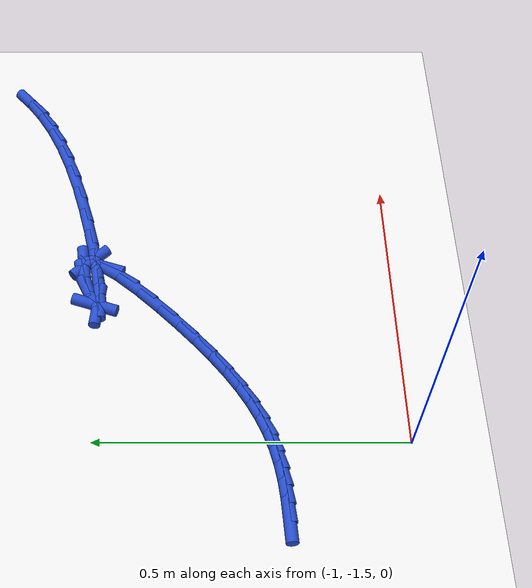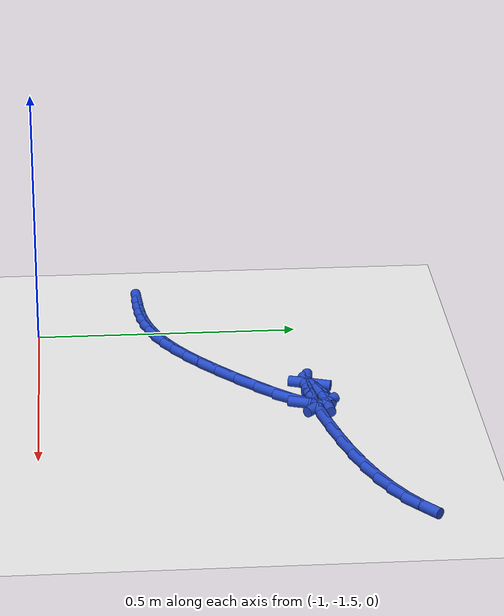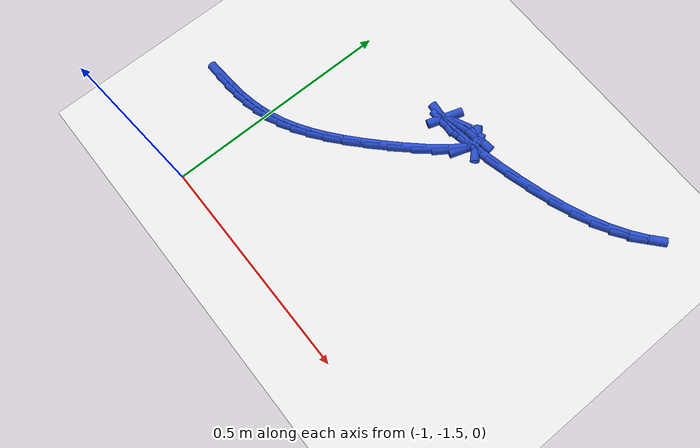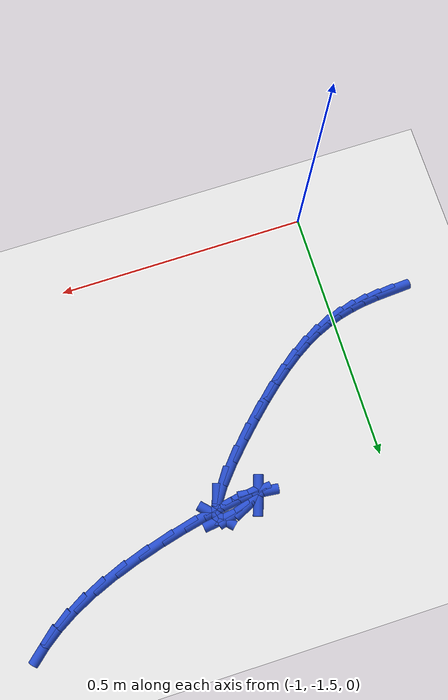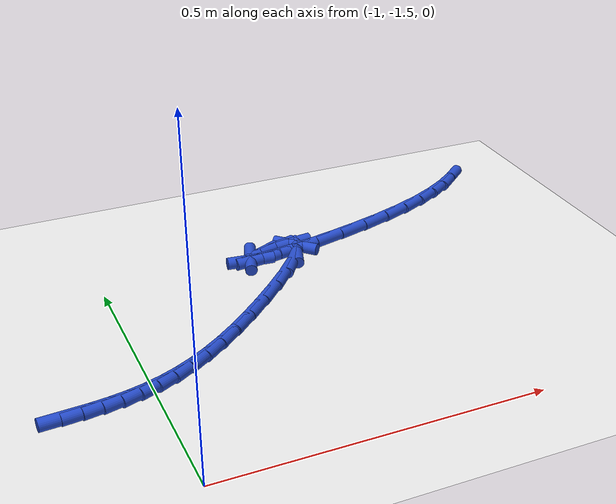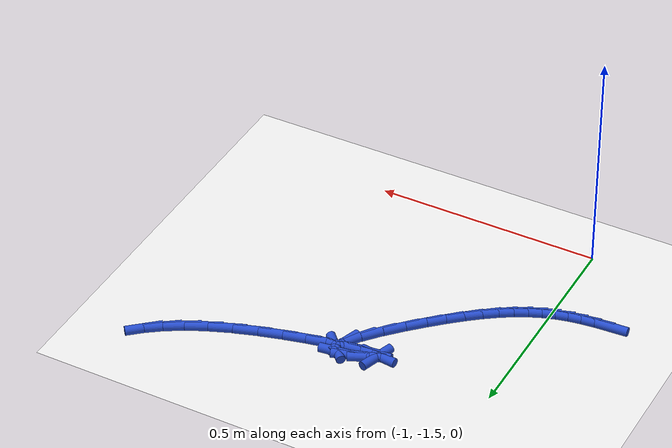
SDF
<sdf version="1.6">
 <world name="default">
  <model name="ground_plane">
   <static>1</static>
   <link name="link">
    <collision name="collision">
     <geometry><plane><normal>0 0 1</normal><size>100 100</size></plane></geometry>
     <surface><friction><ode><mu>100</mu><mu2>50</mu2></ode></friction></surface>
    </collision>
    <visual name="visual">
     <cast_shadows>0</cast_shadows>
     <geometry><plane><normal>0 0 1</normal><size>100 100</size></plane></geometry>
     <material>
      <script><uri>file://media/materials/scripts/gazebo.material</uri><name>Gazebo/WhiteGlow</name></script>
     </material>
    </visual>
   </link>
  </model>
  <model name="line">
   <link name="link_217">
    <pose>-1.1274592770726732 -1.3027210247175114 0.01 0 1.57 0.061918483999061046</pose>
    <collision name="collision">
     <geometry><cylinder><radius>0.01</radius><length>0.08</length></cylinder></geometry>
    </collision>
    <visual name="visual">
     <material>
      <script><name>Gazebo/Blue</name><uri>file://media/materials/scripts/gazebo.material</uri></script>
     </material>
     <geometry><cylinder><radius>0.01</radius><length>0.08</length></cylinder></geometry>
    </visual>
   </link>
   <link name="link_218">
    <pose>-1.0966952616237033 -1.3008137254319017 0.01 0 1.57 0.11054753590388428</pose>
    <collision name="collision">
     <geometry><cylinder><radius>0.01</radius><length>0.08</length></cylinder></geometry>
    </collision>
    <visual name="visual">
     <material>
      <script><name>Gazebo/Blue</name><uri>file://media/materials/scripts/gazebo.material</uri></script>
     </material>
     <geometry><cylinder><radius>0.01</radius><length>0.08</length></cylinder></geometry>
    </visual>
   </link>
   <link name="link_219">
    <pose>-1.0675848770896164 -1.2975824706219656 0.01 0 1.57 0.17142692021866196</pose>
    <collision name="collision">
     <geometry><cylinder><radius>0.01</radius><length>0.08</length></cylinder></geometry>
    </collision>
    <visual name="visual">
     <material>
      <script><name>Gazebo/Blue</name><uri>file://media/materials/scripts/gazebo.material</uri></script>
     </material>
     <geometry><cylinder><radius>0.01</radius><length>0.08</length></cylinder></geometry>
    </visual>
   </link>
   <link name="link_220">
    <pose>-1.0397493821685289 -1.2927634185805694 0.01 0 1.57 0.24273636153643757</pose>
    <collision name="collision">
     <geometry><cylinder><radius>0.01</radius><length>0.08</length></cylinder></geometry>
    </collision>
    <visual name="visual">
     <material>
      <script><name>Gazebo/Blue</name><uri>file://media/materials/scripts/gazebo.material</uri></script>
     </material>
     <geometry><cylinder><radius>0.01</radius><length>0.08</length></cylinder></geometry>
    </visual>
   </link>
   <link name="link_221">
    <pose>-1.0128100355585594 -1.2860927276005805 0.01 0 1.57 0.3210302445852608</pose>
    <collision name="collision">
     <geometry><cylinder><radius>0.01</radius><length>0.08</length></cylinder></geometry>
    </collision>
    <visual name="visual">
     <material>
      <script><name>Gazebo/Blue</name><uri>file://media/materials/scripts/gazebo.material</uri></script>
     </material>
     <geometry><cylinder><radius>0.01</radius><length>0.08</length></cylinder></geometry>
    </visual>
   </link>
   <link name="link_222">
    <pose>-0.9863880959578252 -1.2773065559748644 0.01 0 1.57 0.4017128116155707</pose>
    <collision name="collision">
     <geometry><cylinder><radius>0.01</radius><length>0.08</length></cylinder></geometry>
    </collision>
    <visual name="visual">
     <material>
      <script><name>Gazebo/Blue</name><uri>file://media/materials/scripts/gazebo.material</uri></script>
     </material>
     <geometry><cylinder><radius>0.01</radius><length>0.08</length></cylinder></geometry>
    </visual>
   </link>
   <link name="link_223">
    <pose>-0.9601048220644435 -1.2661410619962883 0.01 0 1.57 0.48000933401203055</pose>
    <collision name="collision">
     <geometry><cylinder><radius>0.01</radius><length>0.08</length></cylinder></geometry>
    </collision>
    <visual name="visual">
     <material>
      <script><name>Gazebo/Blue</name><uri>file://media/materials/scripts/gazebo.material</uri></script>
     </material>
     <geometry><cylinder><radius>0.01</radius><length>0.08</length></cylinder></geometry>
    </visual>
   </link>
   <link name="link_224">
    <pose>-0.9335814725765325 -1.2523324039577184 0.01 0 1.57 0.551996757002641</pose>
    <collision name="collision">
     <geometry><cylinder><radius>0.01</radius><length>0.08</length></cylinder></geometry>
    </collision>
    <visual name="visual">
     <material>
      <script><name>Gazebo/Blue</name><uri>file://media/materials/scripts/gazebo.material</uri></script>
     </material>
     <geometry><cylinder><radius>0.01</radius><length>0.08</length></cylinder></geometry>
    </visual>
   </link>
   <link name="link_225">
    <pose>-0.9064393061922097 -1.2356167401520222 0.01 0 1.57 0.615212448903588</pose>
    <collision name="collision">
     <geometry><cylinder><radius>0.01</radius><length>0.08</length></cylinder></geometry>
    </collision>
    <visual name="visual">
     <material>
      <script><name>Gazebo/Blue</name><uri>file://media/materials/scripts/gazebo.material</uri></script>
     </material>
     <geometry><cylinder><radius>0.01</radius><length>0.08</length></cylinder></geometry>
    </visual>
   </link>
   <link name="link_226">
    <pose>-0.8782995816095918 -1.2157302288720646 0.01 0 1.57 0.6686874405341415</pose>
    <collision name="collision">
     <geometry><cylinder><radius>0.01</radius><length>0.08</length></cylinder></geometry>
    </collision>
    <visual name="visual">
     <material>
      <script><name>Gazebo/Blue</name><uri>file://media/materials/scripts/gazebo.material</uri></script>
     </material>
     <geometry><cylinder><radius>0.01</radius><length>0.08</length></cylinder></geometry>
    </visual>
   </link>
   <link name="link_227">
    <pose>-0.8487835575267983 -1.1924090284107143 0.01 0 1.57 0.7125938819740352</pose>
    <collision name="collision">
     <geometry><cylinder><radius>0.01</radius><length>0.08</length></cylinder></geometry>
    </collision>
    <visual name="visual">
     <material>
      <script><name>Gazebo/Blue</name><uri>file://media/materials/scripts/gazebo.material</uri></script>
     </material>
     <geometry><cylinder><radius>0.01</radius><length>0.08</length></cylinder></geometry>
    </visual>
   </link>
   <link name="link_228">
    <pose>-0.8175124926419459 -1.1653892970608368 0.01 0 1.57 0.7477888500060251</pose>
    <collision name="collision">
     <geometry><cylinder><radius>0.01</radius><length>0.08</length></cylinder></geometry>
    </collision>
    <visual name="visual">
     <material>
      <script><name>Gazebo/Blue</name><uri>file://media/materials/scripts/gazebo.material</uri></script>
     </material>
     <geometry><cylinder><radius>0.01</radius><length>0.08</length></cylinder></geometry>
    </visual>
   </link>
   <link name="link_229">
    <pose>-0.7841080306040339 -1.1344075003681267 0.01 0 1.57 0.7776989915020799</pose>
    <collision name="collision">
     <geometry><cylinder><radius>0.01</radius><length>0.08</length></cylinder></geometry>
    </collision>
    <visual name="visual">
     <material>
      <script><name>Gazebo/Blue</name><uri>file://media/materials/scripts/gazebo.material</uri></script>
     </material>
     <geometry><cylinder><radius>0.01</radius><length>0.08</length></cylinder></geometry>
    </visual>
   </link>
   <link name="link_230">
    <pose>-0.7490493695572047 -1.0998845705358282 0.01 0 1.57 0.8136322173781222</pose>
    <collision name="collision">
     <geometry><cylinder><radius>0.01</radius><length>0.08</length></cylinder></geometry>
    </collision>
    <visual name="visual">
     <material>
      <script><name>Gazebo/Blue</name><uri>file://media/materials/scripts/gazebo.material</uri></script>
     </material>
     <geometry><cylinder><radius>0.01</radius><length>0.08</length></cylinder></geometry>
    </visual>
   </link>
   <link name="link_231">
    <pose>-0.7154953142876787 -1.064380197609681 0.01 0 1.57 0.8682875752735278</pose>
    <collision name="collision">
     <geometry><cylinder><radius>0.01</radius><length>0.08</length></cylinder></geometry>
    </collision>
    <visual name="visual">
     <material>
      <script><name>Gazebo/Blue</name><uri>file://media/materials/scripts/gazebo.material</uri></script>
     </material>
     <geometry><cylinder><radius>0.01</radius><length>0.08</length></cylinder></geometry>
    </visual>
   </link>
   <link name="link_232">
    <pose>-0.6871266117457746 -1.030870665578455 0.01 0 1.57 0.9713114049822166</pose>
    <collision name="collision">
     <geometry><cylinder><radius>0.01</radius><length>0.08</length></cylinder></geometry>
    </collision>
    <visual name="visual">
     <material>
      <script><name>Gazebo/Blue</name><uri>file://media/materials/scripts/gazebo.material</uri></script>
     </material>
     <geometry><cylinder><radius>0.01</radius><length>0.08</length></cylinder></geometry>
    </visual>
   </link>
   <link name="link_233">
    <pose>-0.6676240088818112 -1.0023322584309204 0.01 0 1.57 1.2450260726397075</pose>
    <collision name="collision">
     <geometry><cylinder><radius>0.01</radius><length>0.08</length></cylinder></geometry>
    </collision>
    <visual name="visual">
     <material>
      <script><name>Gazebo/Blue</name><uri>file://media/materials/scripts/gazebo.material</uri></script>
     </material>
     <geometry><cylinder><radius>0.01</radius><length>0.08</length></cylinder></geometry>
    </visual>
   </link>
   <link name="link_234">
    <pose>-0.6606682526461073 -0.9817412601558465 0.01 0 1.57 -0.8062761204572226</pose>
    <collision name="collision">
     <geometry><cylinder><radius>0.01</radius><length>0.08</length></cylinder></geometry>
    </collision>
    <visual name="visual">
     <material>
      <script><name>Gazebo/Blue</name><uri>file://media/materials/scripts/gazebo.material</uri></script>
     </material>
     <geometry><cylinder><radius>0.01</radius><length>0.08</length></cylinder></geometry>
    </visual>
   </link>
   <link name="link_235">
    <pose>-0.6699400899889824 -0.9720739547420053 0.01 0 1.57 0.11937157514421412</pose>
    <collision name="collision">
     <geometry><cylinder><radius>0.01</radius><length>0.08</length></cylinder></geometry>
    </collision>
    <visual name="visual">
     <material>
      <script><name>Gazebo/Blue</name><uri>file://media/materials/scripts/gazebo.material</uri></script>
     </material>
     <geometry><cylinder><radius>0.01</radius><length>0.08</length></cylinder></geometry>
    </visual>
   </link>
   <link name="link_236">
    <pose>-0.6972892793219133 -0.9753542663865916 0.01 0 1.57 0.3125963317028888</pose>
    <collision name="collision">
     <geometry><cylinder><radius>0.01</radius><length>0.08</length></cylinder></geometry>
    </collision>
    <visual name="visual">
     <material>
      <script><name>Gazebo/Blue</name><uri>file://media/materials/scripts/gazebo.material</uri></script>
     </material>
     <geometry><cylinder><radius>0.01</radius><length>0.08</length></cylinder></geometry>
    </visual>
   </link>
   <link name="link_237">
    <pose>-0.7294722657238343 -0.9857555705615569 0.01 0 1.57 0.44201054885750624</pose>
    <collision name="collision">
     <geometry><cylinder><radius>0.01</radius><length>0.08</length></cylinder></geometry>
    </collision>
    <visual name="visual">
     <material>
      <script><name>Gazebo/Blue</name><uri>file://media/materials/scripts/gazebo.material</uri></script>
     </material>
     <geometry><cylinder><radius>0.01</radius><length>0.08</length></cylinder></geometry>
    </visual>
   </link>
   <link name="link_238">
    <pose>-0.7481528331390672 -0.9945959438487295 0.01 0 1.57 1.2464070028444894</pose>
    <collision name="collision">
     <geometry><cylinder><radius>0.01</radius><length>0.08</length></cylinder></geometry>
    </collision>
    <visual name="visual">
     <material>
      <script><name>Gazebo/Blue</name><uri>file://media/materials/scripts/gazebo.material</uri></script>
     </material>
     <geometry><cylinder><radius>0.01</radius><length>0.08</length></cylinder></geometry>
    </visual>
   </link>
   <link name="link_239">
    <pose>-0.7498340566221912 -0.9995955990210558 0.01 0 1.57 -0.10786699622437683</pose>
    <collision name="collision">
     <geometry><cylinder><radius>0.01</radius><length>0.08</length></cylinder></geometry>
    </collision>
    <visual name="visual">
     <material>
      <script><name>Gazebo/Blue</name><uri>file://media/materials/scripts/gazebo.material</uri></script>
     </material>
     <geometry><cylinder><radius>0.01</radius><length>0.08</length></cylinder></geometry>
    </visual>
   </link>
   <link name="link_240">
    <pose>-0.7368673810405776 -1.0009997254013316 0.01 0 1.57 0.07669200865544026</pose>
    <collision name="collision">
     <geometry><cylinder><radius>0.01</radius><length>0.08</length></cylinder></geometry>
    </collision>
    <visual name="visual">
     <material>
      <script><name>Gazebo/Blue</name><uri>file://media/materials/scripts/gazebo.material</uri></script>
     </material>
     <geometry><cylinder><radius>0.01</radius><length>0.08</length></cylinder></geometry>
    </visual>
   </link>
   <link name="link_241">
    <pose>-0.7116181297116415 -0.9990595041976196 0.01 0 1.57 0.14216460869497757</pose>
    <collision name="collision">
     <geometry><cylinder><radius>0.01</radius><length>0.08</length></cylinder></geometry>
    </collision>
    <visual name="visual">
     <material>
      <script><name>Gazebo/Blue</name><uri>file://media/materials/scripts/gazebo.material</uri></script>
     </material>
     <geometry><cylinder><radius>0.01</radius><length>0.08</length></cylinder></geometry>
    </visual>
   </link>
   <link name="link_242">
    <pose>-0.6764516259527973 -0.9940261166179813 0.01 0 1.57 0.18230840244931026</pose>
    <collision name="collision">
     <geometry><cylinder><radius>0.01</radius><length>0.08</length></cylinder></geometry>
    </collision>
    <visual name="visual">
     <material>
      <script><name>Gazebo/Blue</name><uri>file://media/materials/scripts/gazebo.material</uri></script>
     </material>
     <geometry><cylinder><radius>0.01</radius><length>0.08</length></cylinder></geometry>
    </visual>
   </link>
   <link name="link_243">
    <pose>-0.6337331930814585 -0.9861507438704789 0.01 0 1.57 0.21509770115553725</pose>
    <collision name="collision">
     <geometry><cylinder><radius>0.01</radius><length>0.08</length></cylinder></geometry>
    </collision>
    <visual name="visual">
     <material>
      <script><name>Gazebo/Blue</name><uri>file://media/materials/scripts/gazebo.material</uri></script>
     </material>
     <geometry><cylinder><radius>0.01</radius><length>0.08</length></cylinder></geometry>
    </visual>
   </link>
   <link name="link_244">
    <pose>-0.5858281544150421 -0.9756845671631743 0.01 0 1.57 0.24728209512500965</pose>
    <collision name="collision">
     <geometry><cylinder><radius>0.01</radius><length>0.08</length></cylinder></geometry>
    </collision>
    <visual name="visual">
     <material>
      <script><name>Gazebo/Blue</name><uri>file://media/materials/scripts/gazebo.material</uri></script>
     </material>
     <geometry><cylinder><radius>0.01</radius><length>0.08</length></cylinder></geometry>
    </visual>
   </link>
   <link name="link_245">
    <pose>-0.5351018332709622 -0.9628787677041298 0.01 0 1.57 0.28318315548020523</pose>
    <collision name="collision">
     <geometry><cylinder><radius>0.01</radius><length>0.08</length></cylinder></geometry>
    </collision>
    <visual name="visual">
     <material>
      <script><name>Gazebo/Blue</name><uri>file://media/materials/scripts/gazebo.material</uri></script>
     </material>
     <geometry><cylinder><radius>0.01</radius><length>0.08</length></cylinder></geometry>
    </visual>
   </link>
   <link name="link_246">
    <pose>-0.4839195529666329 -0.947984526701407 0.01 0 1.57 0.32735114286962547</pose>
    <collision name="collision">
     <geometry><cylinder><radius>0.01</radius><length>0.08</length></cylinder></geometry>
    </collision>
    <visual name="visual">
     <material>
      <script><name>Gazebo/Blue</name><uri>file://media/materials/scripts/gazebo.material</uri></script>
     </material>
     <geometry><cylinder><radius>0.01</radius><length>0.08</length></cylinder></geometry>
    </visual>
   </link>
   <link name="link_247">
    <pose>-0.43464663681946913 -0.9312530253630679 0.01 0 1.57 0.38601755951005995</pose>
    <collision name="collision">
     <geometry><cylinder><radius>0.01</radius><length>0.08</length></cylinder></geometry>
    </collision>
    <visual name="visual">
     <material>
      <script><name>Gazebo/Blue</name><uri>file://media/materials/scripts/gazebo.material</uri></script>
     </material>
     <geometry><cylinder><radius>0.01</radius><length>0.08</length></cylinder></geometry>
    </visual>
   </link>
   <link name="link_248">
    <pose>-0.38956233700911425 -0.9129304430776526 0.01 0 1.57 0.4582062644376808</pose>
    <collision name="collision">
     <geometry><cylinder><radius>0.01</radius><length>0.08</length></cylinder></geometry>
    </collision>
    <visual name="visual">
     <material>
      <script><name>Gazebo/Blue</name><uri>file://media/materials/scripts/gazebo.material</uri></script>
     </material>
     <geometry><cylinder><radius>0.01</radius><length>0.08</length></cylinder></geometry>
    </visual>
   </link>
   <link name="link_249">
    <pose>-0.349518167460515 -0.8931799896197286 0.01 0 1.57 0.5380583114928016</pose>
    <collision name="collision">
     <geometry><cylinder><radius>0.01</radius><length>0.08</length></cylinder></geometry>
    </collision>
    <visual name="visual">
     <material>
      <script><name>Gazebo/Blue</name><uri>file://media/materials/scripts/gazebo.material</uri></script>
     </material>
     <geometry><cylinder><radius>0.01</radius><length>0.08</length></cylinder></geometry>
    </visual>
   </link>
   <link name="link_250">
    <pose>-0.31419033388226536 -0.8720965745213731 0.01 0 1.57 0.624552368960229</pose>
    <collision name="collision">
     <geometry><cylinder><radius>0.01</radius><length>0.08</length></cylinder></geometry>
    </collision>
    <visual name="visual">
     <material>
      <script><name>Gazebo/Blue</name><uri>file://media/materials/scripts/gazebo.material</uri></script>
     </material>
     <geometry><cylinder><radius>0.01</radius><length>0.08</length></cylinder></geometry>
    </visual>
   </link>
   <link name="link_251">
    <pose>-0.2832200566948755 -0.8497730742278301 0.01 0 1.57 0.7161072485835973</pose>
    <collision name="collision">
     <geometry><cylinder><radius>0.01</radius><length>0.08</length></cylinder></geometry>
    </collision>
    <visual name="visual">
     <material>
      <script><name>Gazebo/Blue</name><uri>file://media/materials/scripts/gazebo.material</uri></script>
     </material>
     <geometry><cylinder><radius>0.01</radius><length>0.08</length></cylinder></geometry>
    </visual>
   </link>
  </model>
 </world>
</sdf>
